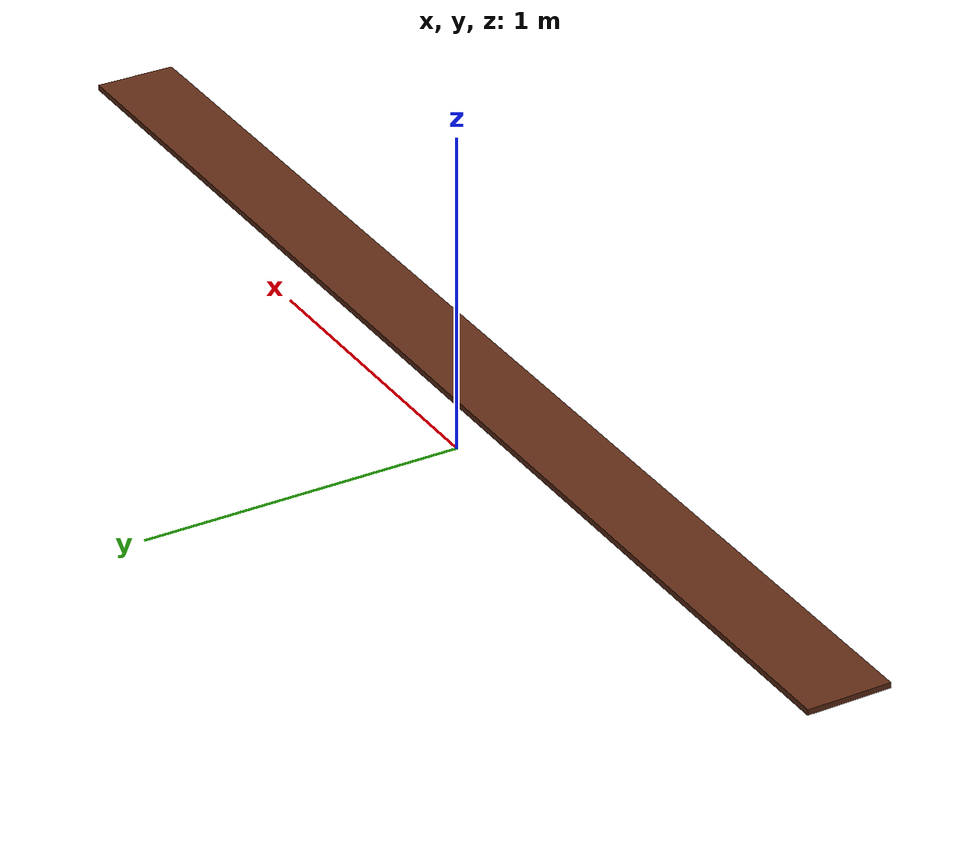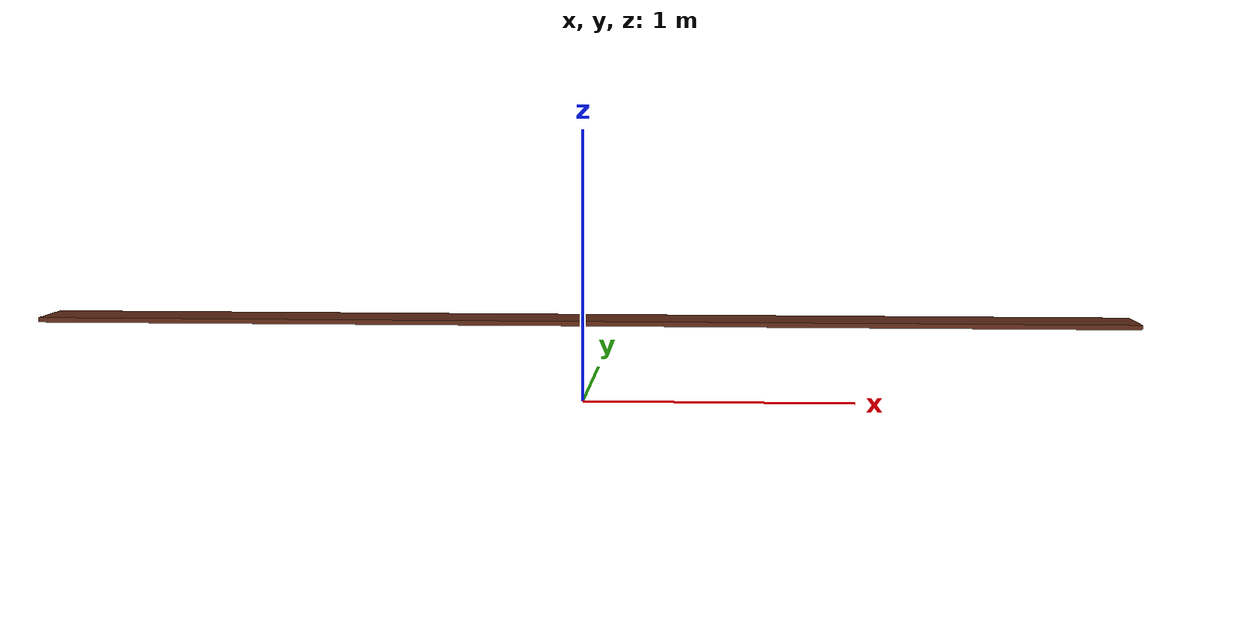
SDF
<?xml version="1.0" ?>
<sdf version="1.5">
  <model name="shelf">
    <static>true</static>
    <link name="shelf_link">
        <pose>0 0 0.3 0 0 0</pose>
        <collision name="shelf_collision">
         <geometry>
	          <box>
                <size>4.01 0.253 0.0175</size>
            </box>
        </geometry>
        <surface>
          <friction>
            <ode>
              <mu>100</mu>
              <mu2>50</mu2>
            </ode>
          </friction>
        </surface>
      </collision>

      <visual name="shelf_mesh">
        <cast_shadows>true</cast_shadows>
        <geometry>
            <mesh>
                <uri>model://lc_shelf/meshes/shelf.dae</uri>
            </mesh>
        </geometry>
	    <material>
          <script>
            <uri>model://lc_shelf/materials/scripts</uri>
            <uri>model://lc_shelf/materials/textures</uri>
            <name>shelfMat/Diffuse</name>
          </script>
        </material>
      </visual>
    </link>
  </model>
</sdf>
